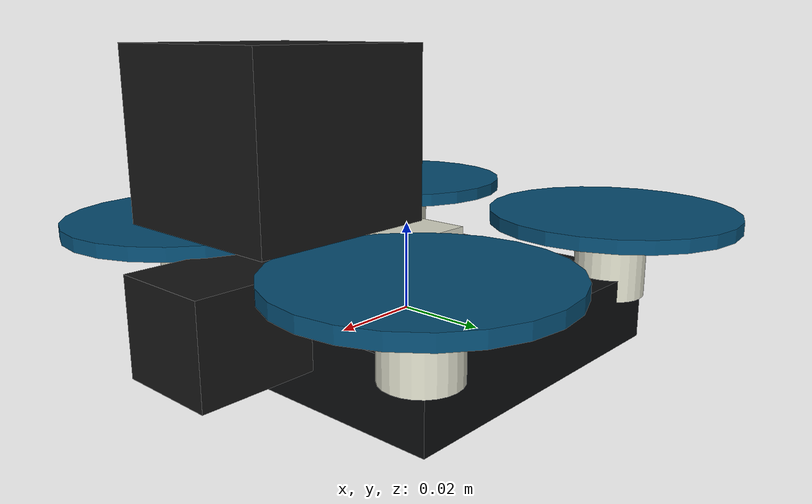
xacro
<?xml version="1.0"?>
<robot xmlns:xacro="http://www.ros.org/wiki/xacro" name="openipc_cinewhoop">
  <xacro:property name="arm" value="0.03313"/>
  <xacro:property name="prop_r" value="0.02794"/>

  <material name="carbon"><color rgba="0.04 0.045 0.05 1.0"/></material>
  <material name="duct"><color rgba="0.02 0.30 0.45 1.0"/></material>
  <material name="sensor"><color rgba="0.85 0.85 0.78 1.0"/></material>
  <material name="camera"><color rgba="0.08 0.08 0.08 1.0"/></material>

  <link name="base_link">
    <visual>
      <origin xyz="0 0 0" rpy="0 0 0"/>
      <geometry><box size="0.077 0.077 0.016"/></geometry>
      <material name="carbon"/>
    </visual>
    <collision>
      <geometry><box size="0.077 0.077 0.016"/></geometry>
    </collision>
    <inertial>
      <mass value="0.22934"/>
      <inertia ixx="0.000225" ixy="0" ixz="0" iyy="0.000225" iyz="0" izz="0.000314"/>
    </inertial>
  </link>

  <xacro:macro name="fixed_box_link" params="name xyz size material rpy:='0 0 0'">
    <link name="${name}">
      <visual>
        <origin xyz="0 0 0" rpy="0 0 0"/>
        <geometry><box size="${size}"/></geometry>
        <material name="${material}"/>
      </visual>
    </link>
    <joint name="${name}_joint" type="fixed">
      <parent link="base_link"/>
      <child link="${name}"/>
      <origin xyz="${xyz}" rpy="${rpy}"/>
    </joint>
  </xacro:macro>

  <xacro:macro name="motor" params="name x y">
    <link name="${name}">
      <visual>
        <origin xyz="0 0 0" rpy="0 0 0"/>
        <geometry><cylinder radius="0.008" length="0.014"/></geometry>
        <material name="sensor"/>
      </visual>
      <visual>
        <origin xyz="0 0 0.011" rpy="0 0 0"/>
        <geometry><cylinder radius="${prop_r}" length="0.003"/></geometry>
        <material name="duct"/>
      </visual>
    </link>
    <joint name="${name}_joint" type="fixed">
      <parent link="base_link"/>
      <child link="${name}"/>
      <origin xyz="${x} ${y} 0.010" rpy="0 0 0"/>
    </joint>
  </xacro:macro>

  <xacro:fixed_box_link name="camera_link" xyz="0.050 0 0.010" size="0.026 0.022 0.020" material="camera"/>
  <link name="camera_optical_frame"/>
  <joint name="camera_optical_frame_joint" type="fixed">
    <parent link="camera_link"/>
    <child link="camera_optical_frame"/>
    <origin xyz="0.014 0 0" rpy="-1.57079632679 0 -1.57079632679"/>
  </joint>

  <xacro:fixed_box_link name="imu_link" xyz="0 0 0.016" size="0.018 0.018 0.006" material="sensor"/>
  <xacro:fixed_box_link name="optical_flow_link" xyz="0 0 -0.014" rpy="0 ${pi/2} 0" size="0.018 0.018 0.006" material="sensor"/>
  <xacro:fixed_box_link name="rangefinder_link" xyz="0.015 0 -0.014" rpy="0 ${pi/2} 0" size="0.014 0.014 0.008" material="sensor"/>
  <!-- On a mast above the propeller plane; see the SDF for why, and the CG
       solve in spec/realna_stavba_dronu/10_pavo20.md for why it sits at 36.4 mm
       rather than further forward. -->
  <xacro:fixed_box_link name="front_lidar_link" xyz="0.0364 0 0.0432" size="0.0386 0.0386 0.0333" material="camera"/>

  <xacro:motor name="motor_1" x="${arm}" y="-${arm}"/>
  <xacro:motor name="motor_2" x="-${arm}" y="${arm}"/>
  <xacro:motor name="motor_3" x="${arm}" y="${arm}"/>
  <xacro:motor name="motor_4" x="-${arm}" y="-${arm}"/>
</robot>
